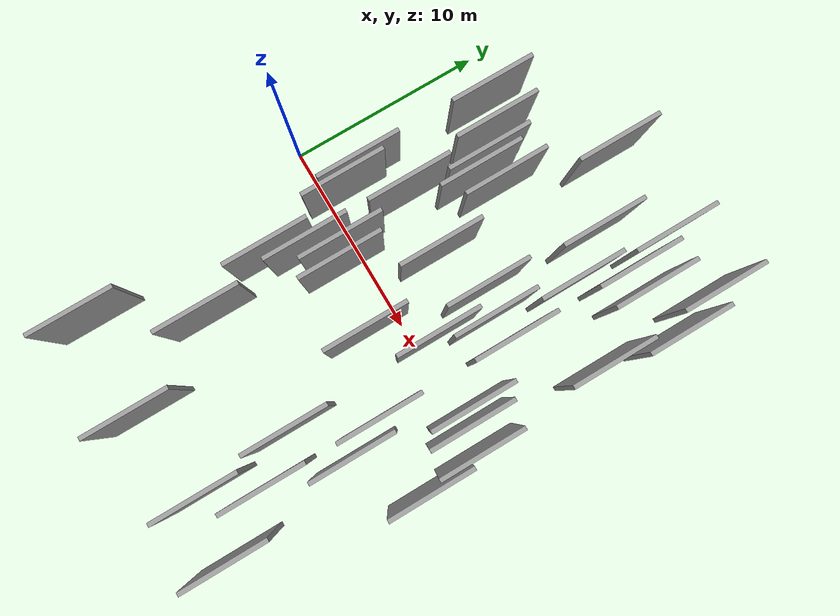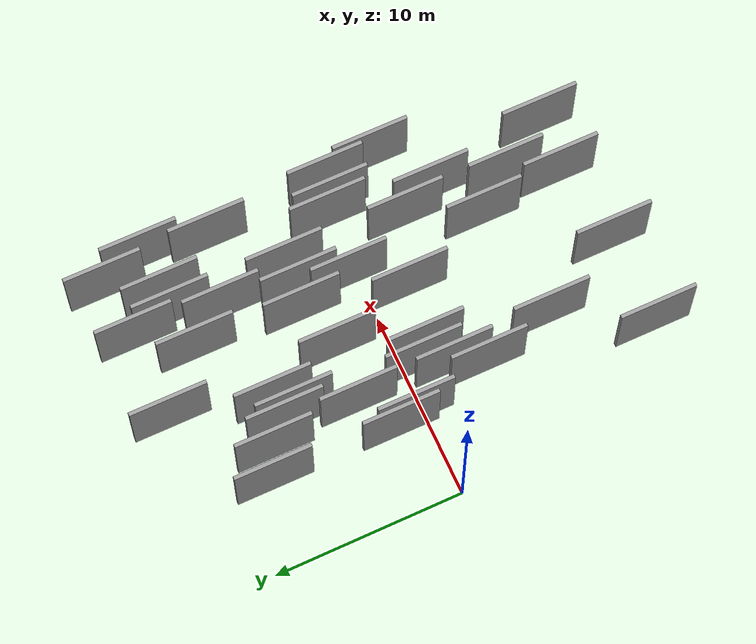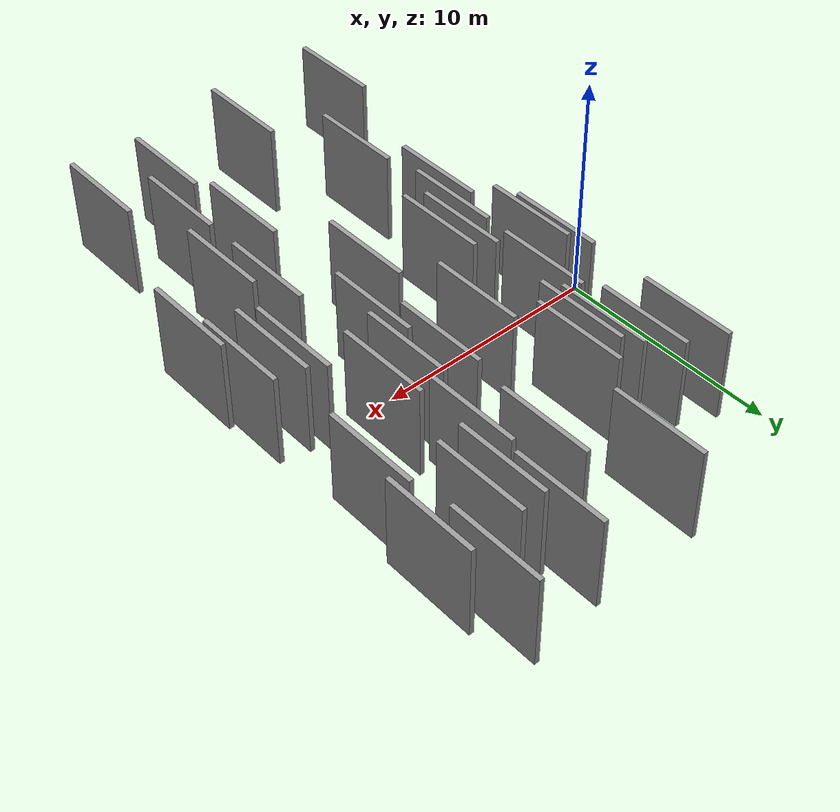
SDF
<sdf version="1.6">
 <world name="default">
  <scene>
   <sky><clouds><speed>12</speed></clouds></sky>
   <ambient>0.4 0.4 0.4 1</ambient>
   <background>0.7 0.7 0.7 1</background>
   <shadows>1</shadows>
  </scene>
  <gravity>0 0 -9.8066</gravity>
  <magnetic_field>6e-06 2.3e-05 -4.2e-05</magnetic_field>
  <physics default="0" name="default_physics" type="ode">
   <ode>
    <solver>
     <type>quick</type>
     <iters>10</iters>
     <sor>1.0</sor>
     <use_dynamic_moi_rescaling>0</use_dynamic_moi_rescaling>
    </solver>
    <constraints>
     <cfm>0</cfm>
     <erp>0.2</erp>
     <contact_max_correcting_vel>100</contact_max_correcting_vel>
     <contact_surface_layer>0.001</contact_surface_layer>
    </constraints>
   </ode>
   <max_step_size>0.004</max_step_size>
   <real_time_factor>1</real_time_factor>
   <real_time_update_rate>250</real_time_update_rate>
  </physics>
  <light name="sun" type="directional">
   <pose>0 0 10 0 0 0</pose>
   <diffuse>0.8 0.8 0.8 1</diffuse>
   <specular>0.2 0.2 0.2 1</specular>
   <attenuation>
    <range>1000</range>
    <constant>0.9</constant>
    <linear>0.01</linear>
    <quadratic>0.001</quadratic>
   </attenuation>
   <direction>-0.5 0.1 -0.9</direction>
  </light>
  <model name="grey_wall_1">
   <static>1</static>
   <pose>9.7592 -1.6104 2.5 0.000000 0.000000 1.570796</pose>
   <link name="link">
    <pose>0 0 2.00 0 0 0</pose>
    <collision name="collision"><geometry><box><size>4.00 0.2 4.00</size></box></geometry></collision>
    <visual name="visual">
     <cast_shadows>0</cast_shadows>
     <geometry><box><size>4.00 0.2 4.00</size></box></geometry>
     <material>
      <script>
       <uri>model://grey_wall/materials/scripts</uri>
       <uri>model://grey_wall/materials/textures</uri>
       <name>vrc/grey_wall</name>
      </script>
     </material>
    </visual>
   </link>
  </model>
  <model name="grey_wall_2">
   <static>1</static>
   <pose>11.6773 -6.4739 2.5 0.000000 0.000000 1.570796</pose>
   <link name="link">
    <pose>0 0 2.00 0 0 0</pose>
    <collision name="collision"><geometry><box><size>4.00 0.2 4.00</size></box></geometry></collision>
    <visual name="visual">
     <cast_shadows>0</cast_shadows>
     <geometry><box><size>4.00 0.2 4.00</size></box></geometry>
     <material>
      <script>
       <uri>model://grey_wall/materials/scripts</uri>
       <uri>model://grey_wall/materials/textures</uri>
       <name>vrc/grey_wall</name>
      </script>
     </material>
    </visual>
   </link>
  </model>
  <model name="grey_wall_3">
   <static>1</static>
   <pose>12.8077 11.5438 2.5 0.000000 0.000000 1.570796</pose>
   <link name="link">
    <pose>0 0 2.00 0 0 0</pose>
    <collision name="collision"><geometry><box><size>4.00 0.2 4.00</size></box></geometry></collision>
    <visual name="visual">
     <cast_shadows>0</cast_shadows>
     <geometry><box><size>4.00 0.2 4.00</size></box></geometry>
     <material>
      <script>
       <uri>model://grey_wall/materials/scripts</uri>
       <uri>model://grey_wall/materials/textures</uri>
       <name>vrc/grey_wall</name>
      </script>
     </material>
    </visual>
   </link>
  </model>
  <model name="grey_wall_4">
   <static>1</static>
   <pose>5.2892 3.1388 2.5 0.000000 0.000000 1.570796</pose>
   <link name="link">
    <pose>0 0 2.00 0 0 0</pose>
    <collision name="collision"><geometry><box><size>4.00 0.2 4.00</size></box></geometry></collision>
    <visual name="visual">
     <cast_shadows>0</cast_shadows>
     <geometry><box><size>4.00 0.2 4.00</size></box></geometry>
     <material>
      <script>
       <uri>model://grey_wall/materials/scripts</uri>
       <uri>model://grey_wall/materials/textures</uri>
       <name>vrc/grey_wall</name>
      </script>
     </material>
    </visual>
   </link>
  </model>
  <model name="grey_wall_5">
   <static>1</static>
   <pose>11.9851 3.2767 2.5 0.000000 0.000000 1.570796</pose>
   <link name="link">
    <pose>0 0 2.00 0 0 0</pose>
    <collision name="collision"><geometry><box><size>4.00 0.2 4.00</size></box></geometry></collision>
    <visual name="visual">
     <cast_shadows>0</cast_shadows>
     <geometry><box><size>4.00 0.2 4.00</size></box></geometry>
     <material>
      <script>
       <uri>model://grey_wall/materials/scripts</uri>
       <uri>model://grey_wall/materials/textures</uri>
       <name>vrc/grey_wall</name>
      </script>
     </material>
    </visual>
   </link>
  </model>
  <model name="grey_wall_6">
   <static>1</static>
   <pose>16.8210 -2.7141 2.5 0.000000 0.000000 1.570796</pose>
   <link name="link">
    <pose>0 0 2.00 0 0 0</pose>
    <collision name="collision"><geometry><box><size>4.00 0.2 4.00</size></box></geometry></collision>
    <visual name="visual">
     <cast_shadows>0</cast_shadows>
     <geometry><box><size>4.00 0.2 4.00</size></box></geometry>
     <material>
      <script>
       <uri>model://grey_wall/materials/scripts</uri>
       <uri>model://grey_wall/materials/textures</uri>
       <name>vrc/grey_wall</name>
      </script>
     </material>
    </visual>
   </link>
  </model>
  <model name="grey_wall_7">
   <static>1</static>
   <pose>6.6641 -1.0126 2.5 0.000000 0.000000 1.570796</pose>
   <link name="link">
    <pose>0 0 2.00 0 0 0</pose>
    <collision name="collision"><geometry><box><size>4.00 0.2 4.00</size></box></geometry></collision>
    <visual name="visual">
     <cast_shadows>0</cast_shadows>
     <geometry><box><size>4.00 0.2 4.00</size></box></geometry>
     <material>
      <script>
       <uri>model://grey_wall/materials/scripts</uri>
       <uri>model://grey_wall/materials/textures</uri>
       <name>vrc/grey_wall</name>
      </script>
     </material>
    </visual>
   </link>
  </model>
  <model name="grey_wall_8">
   <static>1</static>
   <pose>4.6012 -3.4055 2.5 0.000000 0.000000 1.570796</pose>
   <link name="link">
    <pose>0 0 2.00 0 0 0</pose>
    <collision name="collision"><geometry><box><size>4.00 0.2 4.00</size></box></geometry></collision>
    <visual name="visual">
     <cast_shadows>0</cast_shadows>
     <geometry><box><size>4.00 0.2 4.00</size></box></geometry>
     <material>
      <script>
       <uri>model://grey_wall/materials/scripts</uri>
       <uri>model://grey_wall/materials/textures</uri>
       <name>vrc/grey_wall</name>
      </script>
     </material>
    </visual>
   </link>
  </model>
  <model name="grey_wall_9">
   <static>1</static>
   <pose>13.9949 -4.6772 2.5 0.000000 0.000000 1.570796</pose>
   <link name="link">
    <pose>0 0 2.00 0 0 0</pose>
    <collision name="collision"><geometry><box><size>4.00 0.2 4.00</size></box></geometry></collision>
    <visual name="visual">
     <cast_shadows>0</cast_shadows>
     <geometry><box><size>4.00 0.2 4.00</size></box></geometry>
     <material>
      <script>
       <uri>model://grey_wall/materials/scripts</uri>
       <uri>model://grey_wall/materials/textures</uri>
       <name>vrc/grey_wall</name>
      </script>
     </material>
    </visual>
   </link>
  </model>
  <model name="grey_wall_10">
   <static>1</static>
   <pose>13.2294 3.4819 2.5 0.000000 0.000000 1.570796</pose>
   <link name="link">
    <pose>0 0 2.00 0 0 0</pose>
    <collision name="collision"><geometry><box><size>4.00 0.2 4.00</size></box></geometry></collision>
    <visual name="visual">
     <cast_shadows>0</cast_shadows>
     <geometry><box><size>4.00 0.2 4.00</size></box></geometry>
     <material>
      <script>
       <uri>model://grey_wall/materials/scripts</uri>
       <uri>model://grey_wall/materials/textures</uri>
       <name>vrc/grey_wall</name>
      </script>
     </material>
    </visual>
   </link>
  </model>
  <model name="grey_wall_11">
   <static>1</static>
   <pose>14.7511 0.4946 2.5 0.000000 0.000000 1.570796</pose>
   <link name="link">
    <pose>0 0 2.00 0 0 0</pose>
    <collision name="collision"><geometry><box><size>4.00 0.2 4.00</size></box></geometry></collision>
    <visual name="visual">
     <cast_shadows>0</cast_shadows>
     <geometry><box><size>4.00 0.2 4.00</size></box></geometry>
     <material>
      <script>
       <uri>model://grey_wall/materials/scripts</uri>
       <uri>model://grey_wall/materials/textures</uri>
       <name>vrc/grey_wall</name>
      </script>
     </material>
    </visual>
   </link>
  </model>
  <model name="grey_wall_12">
   <static>1</static>
   <pose>8.3397 2.8619 2.5 0.000000 0.000000 1.570796</pose>
   <link name="link">
    <pose>0 0 2.00 0 0 0</pose>
    <collision name="collision"><geometry><box><size>4.00 0.2 4.00</size></box></geometry></collision>
    <visual name="visual">
     <cast_shadows>0</cast_shadows>
     <geometry><box><size>4.00 0.2 4.00</size></box></geometry>
     <material>
      <script>
       <uri>model://grey_wall/materials/scripts</uri>
       <uri>model://grey_wall/materials/textures</uri>
       <name>vrc/grey_wall</name>
      </script>
     </material>
    </visual>
   </link>
  </model>
  <model name="grey_wall_13">
   <static>1</static>
   <pose>11.4666 0.8533 2.5 0.000000 0.000000 1.570796</pose>
   <link name="link">
    <pose>0 0 2.00 0 0 0</pose>
    <collision name="collision"><geometry><box><size>4.00 0.2 4.00</size></box></geometry></collision>
    <visual name="visual">
     <cast_shadows>0</cast_shadows>
     <geometry><box><size>4.00 0.2 4.00</size></box></geometry>
     <material>
      <script>
       <uri>model://grey_wall/materials/scripts</uri>
       <uri>model://grey_wall/materials/textures</uri>
       <name>vrc/grey_wall</name>
      </script>
     </material>
    </visual>
   </link>
  </model>
  <model name="grey_wall_14">
   <static>1</static>
   <pose>13.2216 -2.9685 2.5 0.000000 0.000000 1.570796</pose>
   <link name="link">
    <pose>0 0 2.00 0 0 0</pose>
    <collision name="collision"><geometry><box><size>4.00 0.2 4.00</size></box></geometry></collision>
    <visual name="visual">
     <cast_shadows>0</cast_shadows>
     <geometry><box><size>4.00 0.2 4.00</size></box></geometry>
     <material>
      <script>
       <uri>model://grey_wall/materials/scripts</uri>
       <uri>model://grey_wall/materials/textures</uri>
       <name>vrc/grey_wall</name>
      </script>
     </material>
    </visual>
   </link>
  </model>
  <model name="grey_wall_15">
   <static>1</static>
   <pose>14.3509 9.5449 2.5 0.000000 0.000000 1.570796</pose>
   <link name="link">
    <pose>0 0 2.00 0 0 0</pose>
    <collision name="collision"><geometry><box><size>4.00 0.2 4.00</size></box></geometry></collision>
    <visual name="visual">
     <cast_shadows>0</cast_shadows>
     <geometry><box><size>4.00 0.2 4.00</size></box></geometry>
     <material>
      <script>
       <uri>model://grey_wall/materials/scripts</uri>
       <uri>model://grey_wall/materials/textures</uri>
       <name>vrc/grey_wall</name>
      </script>
     </material>
    </visual>
   </link>
  </model>
  <model name="grey_wall_16">
   <static>1</static>
   <pose>7.8540 -11.6183 2.5 0.000000 0.000000 1.570796</pose>
   <link name="link">
    <pose>0 0 2.00 0 0 0</pose>
    <collision name="collision"><geometry><box><size>4.00 0.2 4.00</size></box></geometry></collision>
    <visual name="visual">
     <cast_shadows>0</cast_shadows>
     <geometry><box><size>4.00 0.2 4.00</size></box></geometry>
     <material>
      <script>
       <uri>model://grey_wall/materials/scripts</uri>
       <uri>model://grey_wall/materials/textures</uri>
       <name>vrc/grey_wall</name>
      </script>
     </material>
    </visual>
   </link>
  </model>
  <model name="grey_wall_17">
   <static>1</static>
   <pose>3.4030 8.3914 2.5 0.000000 0.000000 1.570796</pose>
   <link name="link">
    <pose>0 0 2.00 0 0 0</pose>
    <collision name="collision"><geometry><box><size>4.00 0.2 4.00</size></box></geometry></collision>
    <visual name="visual">
     <cast_shadows>0</cast_shadows>
     <geometry><box><size>4.00 0.2 4.00</size></box></geometry>
     <material>
      <script>
       <uri>model://grey_wall/materials/scripts</uri>
       <uri>model://grey_wall/materials/textures</uri>
       <name>vrc/grey_wall</name>
      </script>
     </material>
    </visual>
   </link>
  </model>
  <model name="grey_wall_18">
   <static>1</static>
   <pose>16.1538 6.3049 2.5 0.000000 0.000000 1.570796</pose>
   <link name="link">
    <pose>0 0 2.00 0 0 0</pose>
    <collision name="collision"><geometry><box><size>4.00 0.2 4.00</size></box></geometry></collision>
    <visual name="visual">
     <cast_shadows>0</cast_shadows>
     <geometry><box><size>4.00 0.2 4.00</size></box></geometry>
     <material>
      <script>
       <uri>model://grey_wall/materials/scripts</uri>
       <uri>model://grey_wall/materials/textures</uri>
       <name>vrc/grey_wall</name>
      </script>
     </material>
    </visual>
   </link>
  </model>
  <model name="grey_wall_19">
   <static>1</static>
   <pose>16.5212 -0.1748 2.5 0.000000 0.000000 1.570796</pose>
   <link name="link">
    <pose>0 0 2.00 0 0 0</pose>
    <collision name="collision"><geometry><box><size>4.00 0.2 4.00</size></box></geometry></collision>
    <visual name="visual">
     <cast_shadows>0</cast_shadows>
     <geometry><box><size>4.00 0.2 4.00</size></box></geometry>
     <material>
      <script>
       <uri>model://grey_wall/materials/scripts</uri>
       <uri>model://grey_wall/materials/textures</uri>
       <name>vrc/grey_wall</name>
      </script>
     </material>
    </visual>
   </link>
  </model>
  <model name="grey_wall_20">
   <static>1</static>
   <pose>10.7692 3.6537 2.5 0.000000 0.000000 1.570796</pose>
   <link name="link">
    <pose>0 0 2.00 0 0 0</pose>
    <collision name="collision"><geometry><box><size>4.00 0.2 4.00</size></box></geometry></collision>
    <visual name="visual">
     <cast_shadows>0</cast_shadows>
     <geometry><box><size>4.00 0.2 4.00</size></box></geometry>
     <material>
      <script>
       <uri>model://grey_wall/materials/scripts</uri>
       <uri>model://grey_wall/materials/textures</uri>
       <name>vrc/grey_wall</name>
      </script>
     </material>
    </visual>
   </link>
  </model>
  <model name="grey_wall_21">
   <static>1</static>
   <pose>16.6238 9.6895 2.5 0.000000 0.000000 1.570796</pose>
   <link name="link">
    <pose>0 0 2.00 0 0 0</pose>
    <collision name="collision"><geometry><box><size>4.00 0.2 4.00</size></box></geometry></collision>
    <visual name="visual">
     <cast_shadows>0</cast_shadows>
     <geometry><box><size>4.00 0.2 4.00</size></box></geometry>
     <material>
      <script>
       <uri>model://grey_wall/materials/scripts</uri>
       <uri>model://grey_wall/materials/textures</uri>
       <name>vrc/grey_wall</name>
      </script>
     </material>
    </visual>
   </link>
  </model>
  <model name="grey_wall_22">
   <static>1</static>
   <pose>3.3506 1.7838 2.5 0.000000 0.000000 1.570796</pose>
   <link name="link">
    <pose>0 0 2.00 0 0 0</pose>
    <collision name="collision"><geometry><box><size>4.00 0.2 4.00</size></box></geometry></collision>
    <visual name="visual">
     <cast_shadows>0</cast_shadows>
     <geometry><box><size>4.00 0.2 4.00</size></box></geometry>
     <material>
      <script>
       <uri>model://grey_wall/materials/scripts</uri>
       <uri>model://grey_wall/materials/textures</uri>
       <name>vrc/grey_wall</name>
      </script>
     </material>
    </visual>
   </link>
  </model>
  <model name="grey_wall_23">
   <static>1</static>
   <pose>13.2113 -8.3599 2.5 0.000000 0.000000 1.570796</pose>
   <link name="link">
    <pose>0 0 2.00 0 0 0</pose>
    <collision name="collision"><geometry><box><size>4.00 0.2 4.00</size></box></geometry></collision>
    <visual name="visual">
     <cast_shadows>0</cast_shadows>
     <geometry><box><size>4.00 0.2 4.00</size></box></geometry>
     <material>
      <script>
       <uri>model://grey_wall/materials/scripts</uri>
       <uri>model://grey_wall/materials/textures</uri>
       <name>vrc/grey_wall</name>
      </script>
     </material>
    </visual>
   </link>
  </model>
  <model name="grey_wall_24">
   <static>1</static>
   <pose>3.6928 0.8385 2.5 0.000000 0.000000 1.570796</pose>
   <link name="link">
    <pose>0 0 2.00 0 0 0</pose>
    <collision name="collision"><geometry><box><size>4.00 0.2 4.00</size></box></geometry></collision>
    <visual name="visual">
     <cast_shadows>0</cast_shadows>
     <geometry><box><size>4.00 0.2 4.00</size></box></geometry>
     <material>
      <script>
       <uri>model://grey_wall/materials/scripts</uri>
       <uri>model://grey_wall/materials/textures</uri>
       <name>vrc/grey_wall</name>
      </script>
     </material>
    </visual>
   </link>
  </model>
  <model name="grey_wall_25">
   <static>1</static>
   <pose>5.9447 -0.5762 2.5 0.000000 0.000000 1.570796</pose>
   <link name="link">
    <pose>0 0 2.00 0 0 0</pose>
    <collision name="collision"><geometry><box><size>4.00 0.2 4.00</size></box></geometry></collision>
    <visual name="visual">
     <cast_shadows>0</cast_shadows>
     <geometry><box><size>4.00 0.2 4.00</size></box></geometry>
     <material>
      <script>
       <uri>model://grey_wall/materials/scripts</uri>
       <uri>model://grey_wall/materials/textures</uri>
       <name>vrc/grey_wall</name>
      </script>
     </material>
    </visual>
   </link>
  </model>
  <model name="grey_wall_26">
   <static>1</static>
   <pose>12.1567 -10.8247 2.5 0.000000 0.000000 1.570796</pose>
   <link name="link">
    <pose>0 0 2.00 0 0 0</pose>
    <collision name="collision"><geometry><box><size>4.00 0.2 4.00</size></box></geometry></collision>
    <visual name="visual">
     <cast_shadows>0</cast_shadows>
     <geometry><box><size>4.00 0.2 4.00</size></box></geometry>
     <material>
      <script>
       <uri>model://grey_wall/materials/scripts</uri>
       <uri>model://grey_wall/materials/textures</uri>
       <name>vrc/grey_wall</name>
      </script>
     </material>
    </visual>
   </link>
  </model>
  <model name="grey_wall_27">
   <static>1</static>
   <pose>15.0164 -11.0518 2.5 0.000000 0.000000 1.570796</pose>
   <link name="link">
    <pose>0 0 2.00 0 0 0</pose>
    <collision name="collision"><geometry><box><size>4.00 0.2 4.00</size></box></geometry></collision>
    <visual name="visual">
     <cast_shadows>0</cast_shadows>
     <geometry><box><size>4.00 0.2 4.00</size></box></geometry>
     <material>
      <script>
       <uri>model://grey_wall/materials/scripts</uri>
       <uri>model://grey_wall/materials/textures</uri>
       <name>vrc/grey_wall</name>
      </script>
     </material>
    </visual>
   </link>
  </model>
  <model name="grey_wall_28">
   <static>1</static>
   <pose>11.0796 9.0973 2.5 0.000000 0.000000 1.570796</pose>
   <link name="link">
    <pose>0 0 2.00 0 0 0</pose>
    <collision name="collision"><geometry><box><size>4.00 0.2 4.00</size></box></geometry></collision>
    <visual name="visual">
     <cast_shadows>0</cast_shadows>
     <geometry><box><size>4.00 0.2 4.00</size></box></geometry>
     <material>
      <script>
       <uri>model://grey_wall/materials/scripts</uri>
       <uri>model://grey_wall/materials/textures</uri>
       <name>vrc/grey_wall</name>
      </script>
     </material>
    </visual>
   </link>
  </model>
  <model name="grey_wall_29">
   <static>1</static>
   <pose>5.5809 -7.1650 2.5 0.000000 0.000000 1.570796</pose>
   <link name="link">
    <pose>0 0 2.00 0 0 0</pose>
    <collision name="collision"><geometry><box><size>4.00 0.2 4.00</size></box></geometry></collision>
    <visual name="visual">
     <cast_shadows>0</cast_shadows>
     <geometry><box><size>4.00 0.2 4.00</size></box></geometry>
     <material>
      <script>
       <uri>model://grey_wall/materials/scripts</uri>
       <uri>model://grey_wall/materials/textures</uri>
       <name>vrc/grey_wall</name>
      </script>
     </material>
    </visual>
   </link>
  </model>
  <model name="grey_wall_30">
   <static>1</static>
   <pose>4.8474 7.7330 2.5 0.000000 0.000000 1.570796</pose>
   <link name="link">
    <pose>0 0 2.00 0 0 0</pose>
    <collision name="collision"><geometry><box><size>4.00 0.2 4.00</size></box></geometry></collision>
    <visual name="visual">
     <cast_shadows>0</cast_shadows>
     <geometry><box><size>4.00 0.2 4.00</size></box></geometry>
     <material>
      <script>
       <uri>model://grey_wall/materials/scripts</uri>
       <uri>model://grey_wall/materials/textures</uri>
       <name>vrc/grey_wall</name>
      </script>
     </material>
    </visual>
   </link>
  </model>
  <model name="grey_wall_31">
   <static>1</static>
   <pose>13.2948 9.4437 2.5 0.000000 0.000000 1.570796</pose>
   <link name="link">
    <pose>0 0 2.00 0 0 0</pose>
    <collision name="collision"><geometry><box><size>4.00 0.2 4.00</size></box></geometry></collision>
    <visual name="visual">
     <cast_shadows>0</cast_shadows>
     <geometry><box><size>4.00 0.2 4.00</size></box></geometry>
     <material>
      <script>
       <uri>model://grey_wall/materials/scripts</uri>
       <uri>model://grey_wall/materials/textures</uri>
       <name>vrc/grey_wall</name>
      </script>
     </material>
    </visual>
   </link>
  </model>
  <model name="grey_wall_32">
   <static>1</static>
   <pose>5.2356 -1.8650 2.5 0.000000 0.000000 1.570796</pose>
   <link name="link">
    <pose>0 0 2.00 0 0 0</pose>
    <collision name="collision"><geometry><box><size>4.00 0.2 4.00</size></box></geometry></collision>
    <visual name="visual">
     <cast_shadows>0</cast_shadows>
     <geometry><box><size>4.00 0.2 4.00</size></box></geometry>
     <material>
      <script>
       <uri>model://grey_wall/materials/scripts</uri>
       <uri>model://grey_wall/materials/textures</uri>
       <name>vrc/grey_wall</name>
      </script>
     </material>
    </visual>
   </link>
  </model>
  <model name="grey_wall_33">
   <static>1</static>
   <pose>7.1404 6.7686 2.5 0.000000 0.000000 1.570796</pose>
   <link name="link">
    <pose>0 0 2.00 0 0 0</pose>
    <collision name="collision"><geometry><box><size>4.00 0.2 4.00</size></box></geometry></collision>
    <visual name="visual">
     <cast_shadows>0</cast_shadows>
     <geometry><box><size>4.00 0.2 4.00</size></box></geometry>
     <material>
      <script>
       <uri>model://grey_wall/materials/scripts</uri>
       <uri>model://grey_wall/materials/textures</uri>
       <name>vrc/grey_wall</name>
      </script>
     </material>
    </visual>
   </link>
  </model>
  <model name="grey_wall_34">
   <static>1</static>
   <pose>8.3448 11.6345 2.5 0.000000 0.000000 1.570796</pose>
   <link name="link">
    <pose>0 0 2.00 0 0 0</pose>
    <collision name="collision"><geometry><box><size>4.00 0.2 4.00</size></box></geometry></collision>
    <visual name="visual">
     <cast_shadows>0</cast_shadows>
     <geometry><box><size>4.00 0.2 4.00</size></box></geometry>
     <material>
      <script>
       <uri>model://grey_wall/materials/scripts</uri>
       <uri>model://grey_wall/materials/textures</uri>
       <name>vrc/grey_wall</name>
      </script>
     </material>
    </visual>
   </link>
  </model>
  <model name="grey_wall_35">
   <static>1</static>
   <pose>5.8718 6.7140 2.5 0.000000 0.000000 1.570796</pose>
   <link name="link">
    <pose>0 0 2.00 0 0 0</pose>
    <collision name="collision"><geometry><box><size>4.00 0.2 4.00</size></box></geometry></collision>
    <visual name="visual">
     <cast_shadows>0</cast_shadows>
     <geometry><box><size>4.00 0.2 4.00</size></box></geometry>
     <material>
      <script>
       <uri>model://grey_wall/materials/scripts</uri>
       <uri>model://grey_wall/materials/textures</uri>
       <name>vrc/grey_wall</name>
      </script>
     </material>
    </visual>
   </link>
  </model>
  <model name="grey_wall_36">
   <static>1</static>
   <pose>12.5078 7.1317 2.5 0.000000 0.000000 1.570796</pose>
   <link name="link">
    <pose>0 0 2.00 0 0 0</pose>
    <collision name="collision"><geometry><box><size>4.00 0.2 4.00</size></box></geometry></collision>
    <visual name="visual">
     <cast_shadows>0</cast_shadows>
     <geometry><box><size>4.00 0.2 4.00</size></box></geometry>
     <material>
      <script>
       <uri>model://grey_wall/materials/scripts</uri>
       <uri>model://grey_wall/materials/textures</uri>
       <name>vrc/grey_wall</name>
      </script>
     </material>
    </visual>
   </link>
  </model>
  <model name="grey_wall_37">
   <static>1</static>
   <pose>6.2980 6.0535 2.5 0.000000 0.000000 1.570796</pose>
   <link name="link">
    <pose>0 0 2.00 0 0 0</pose>
    <collision name="collision"><geometry><box><size>4.00 0.2 4.00</size></box></geometry></collision>
    <visual name="visual">
     <cast_shadows>0</cast_shadows>
     <geometry><box><size>4.00 0.2 4.00</size></box></geometry>
     <material>
      <script>
       <uri>model://grey_wall/materials/scripts</uri>
       <uri>model://grey_wall/materials/textures</uri>
       <name>vrc/grey_wall</name>
      </script>
     </material>
    </visual>
   </link>
  </model>
  <model name="grey_wall_38">
   <static>1</static>
   <pose>15.8809 11.8713 2.5 0.000000 0.000000 1.570796</pose>
   <link name="link">
    <pose>0 0 2.00 0 0 0</pose>
    <collision name="collision"><geometry><box><size>4.00 0.2 4.00</size></box></geometry></collision>
    <visual name="visual">
     <cast_shadows>0</cast_shadows>
     <geometry><box><size>4.00 0.2 4.00</size></box></geometry>
     <material>
      <script>
       <uri>model://grey_wall/materials/scripts</uri>
       <uri>model://grey_wall/materials/textures</uri>
       <name>vrc/grey_wall</name>
      </script>
     </material>
    </visual>
   </link>
  </model>
  <model name="grey_wall_39">
   <static>1</static>
   <pose>15.3615 0.0816 2.5 0.000000 0.000000 1.570796</pose>
   <link name="link">
    <pose>0 0 2.00 0 0 0</pose>
    <collision name="collision"><geometry><box><size>4.00 0.2 4.00</size></box></geometry></collision>
    <visual name="visual">
     <cast_shadows>0</cast_shadows>
     <geometry><box><size>4.00 0.2 4.00</size></box></geometry>
     <material>
      <script>
       <uri>model://grey_wall/materials/scripts</uri>
       <uri>model://grey_wall/materials/textures</uri>
       <name>vrc/grey_wall</name>
      </script>
     </material>
    </visual>
   </link>
  </model>
  <model name="grey_wall_40">
   <static>1</static>
   <pose>3.0823 -11.6379 2.5 0.000000 0.000000 1.570796</pose>
   <link name="link">
    <pose>0 0 2.00 0 0 0</pose>
    <collision name="collision"><geometry><box><size>4.00 0.2 4.00</size></box></geometry></collision>
    <visual name="visual">
     <cast_shadows>0</cast_shadows>
     <geometry><box><size>4.00 0.2 4.00</size></box></geometry>
     <material>
      <script>
       <uri>model://grey_wall/materials/scripts</uri>
       <uri>model://grey_wall/materials/textures</uri>
       <name>vrc/grey_wall</name>
      </script>
     </material>
    </visual>
   </link>
  </model>
 </world>
</sdf>
